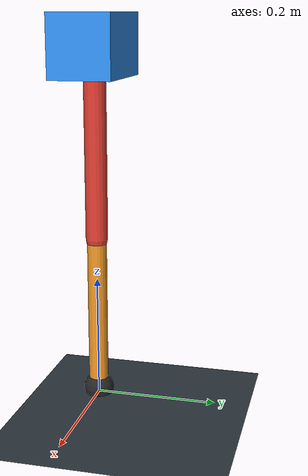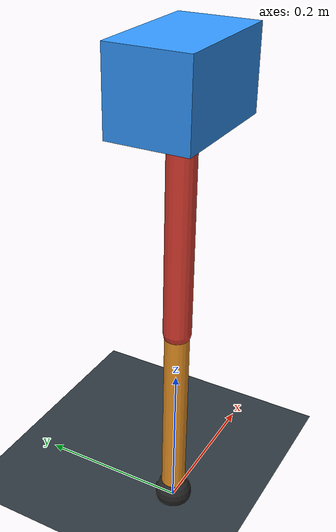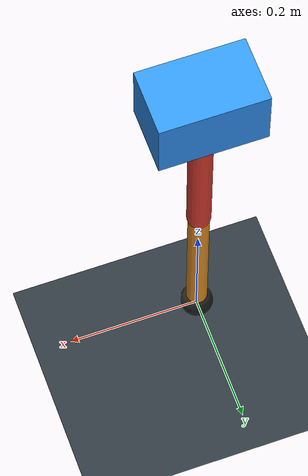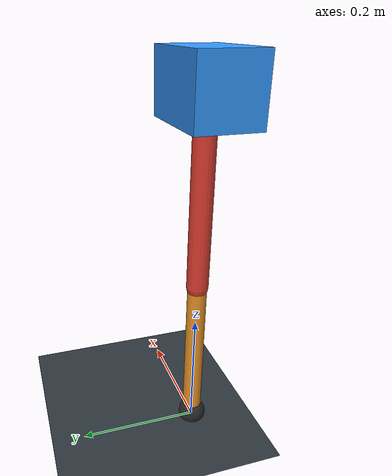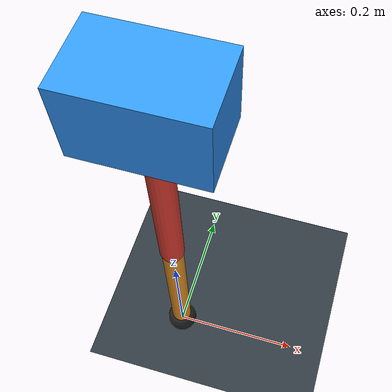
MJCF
<mujoco model="single_axis_two_bar">
  <compiler angle="radian" inertiafromgeom="true"/>
  <option timestep="0.001" integrator="implicitfast" gravity="0 0 -9.81"/>
  <default>
    <joint damping="0.08"/>
    <geom friction="1.2 0.01 0.0001" condim="3"/>
  </default>
  <worldbody>
    <geom name="floor" type="plane" size="5 5 0.1" rgba="0.18 0.22 0.25 1"/>
    <body name="carriage" pos="0 0 0.5814881046423289">
      <joint name="pole_slide" type="slide" axis="0 0 1"/>
      <geom name="payload" type="box" size="0.08 0.05 0.05" mass="2.623128550024289" rgba="0.2 0.6 1 1"/>
      <body name="thigh" pos="0 0 0">
        <joint name="hip" type="hinge" axis="0 1 0"/>
        <geom name="thigh_link" type="capsule" fromto="0 0 0 0 0 -0.3122019658516674" size="0.018" mass="0.22244802605431577" rgba="0.9 0.25 0.2 1"/>
        <body name="shank" pos="0 0 -0.3122019658516674">
          <joint name="knee" type="hinge" axis="0 1 0"/>
          <geom name="shank_link" type="capsule" fromto="0 0 0 0 0 -0.2614971110991872" size="0.016" mass="0.18632014703763158" rgba="0.95 0.6 0.15 1"/>
          <geom name="foot" type="sphere" pos="0 0 -0.2614971110991872" size="0.025" mass="0.03" rgba="0.15 0.15 0.15 1"/>
          <site name="toe" pos="0 0 -0.2614971110991872" size="0.008"/>
        </body>
      </body>
    </body>
  </worldbody>
  <actuator>
    <motor name="hip_motor" joint="hip" ctrlrange="-26.71996675506285 26.71996675506285"/>
    <motor name="knee_motor" joint="knee" ctrlrange="-76.22019134748184 76.22019134748184"/>
  </actuator>
</mujoco>
